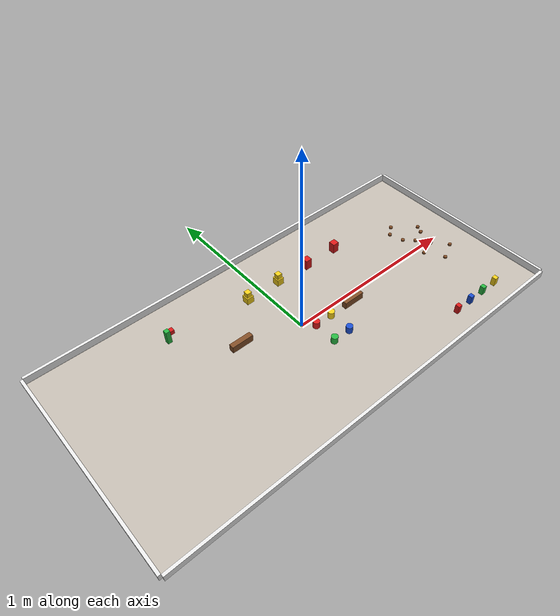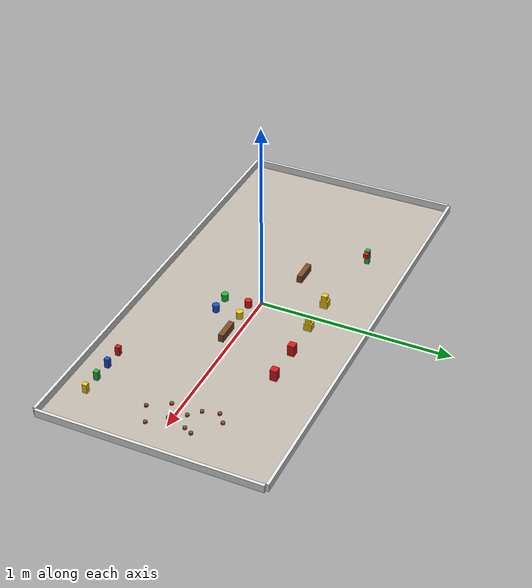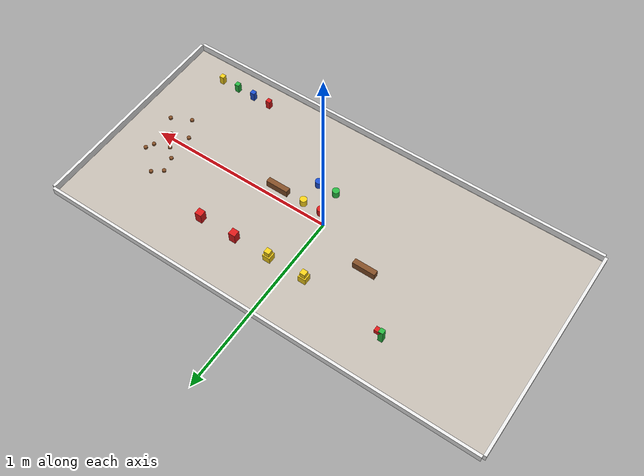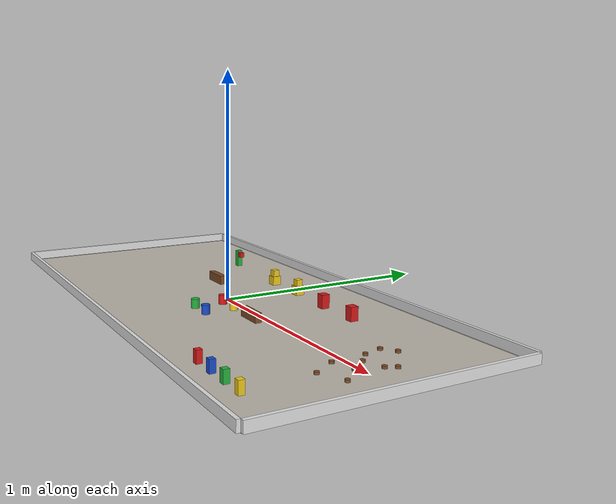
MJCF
<mujoco model="wro_2026_junior_heritage_heroes">
  <compiler angle="degree" coordinate="local"/>

  <option timestep="0.001" iterations="20" solver="Newton"/>

  <asset>
    <texture name="mat_tex" type="2d" file="mat.png"/>
    <material name="mat" texture="mat_tex" texrepeat="1 1"
              specular="0" shininess="0" reflectance="0"/>
    <material name="wall" rgba="0.90 0.90 0.90 1"/>

    <!-- LEGO prop colours -->
    <material name="lego_red"     rgba="0.85 0.10 0.10 1"/>
    <material name="lego_yellow"  rgba="0.95 0.80 0.10 1"/>
    <material name="lego_green"   rgba="0.15 0.70 0.25 1"/>
    <material name="lego_blue"    rgba="0.10 0.30 0.80 1"/>
    <material name="lego_white"   rgba="0.95 0.95 0.95 1"/>
    <material name="lego_black"   rgba="0.08 0.08 0.08 1"/>
    <material name="lego_brown"   rgba="0.50 0.30 0.15 1"/>
    <material name="lego_gray"    rgba="0.55 0.55 0.58 1"/>
  </asset>

  <worldbody>
    <light pos=" 0.6 0 1.6" dir="0 0 -1" diffuse="0.95 0.95 0.95"/>
    <light pos="-0.6 0 1.6" dir="0 0 -1" diffuse="0.65 0.65 0.65"/>

    <!-- ===== MAT (2.362 × 1.143 m, printed texture) ===== -->
    <geom name="mat" type="plane" size="1.181 0.5715 0.01"
          material="mat" friction="0.8 0.02 0.0001"/>

    <!-- Border walls. -->
    <geom name="wall_n" type="box" pos=" 0     0.579  0.02"
          size="1.181 0.0075 0.02" material="wall"/>
    <geom name="wall_s" type="box" pos=" 0    -0.579  0.02"
          size="1.181 0.0075 0.02" material="wall"/>
    <geom name="wall_e" type="box" pos=" 1.188 0      0.02"
          size="0.0075 0.5715 0.02" material="wall"/>
    <geom name="wall_w" type="box" pos="-1.188 0      0.02"
          size="0.0075 0.5715 0.02" material="wall"/>

    <!-- =========================================================
         MISSION 3.5 — bonus props (don't damage/move)
         ========================================================= -->
    <!-- Parrot: green LEGO bird sculpture, ~3×3 stud footprint.
         Upper-mid of the field. -->
    <body name="parrot" pos="-0.55  0.35  0.040">
      <freejoint/>
      <geom type="box" size="0.012 0.012 0.040" mass="0.05" material="lego_green"/>
      <geom type="box" size="0.020 0.012 0.012" pos="0.014 0 0.020"
            mass="0.01" material="lego_red"/>
    </body>

    <!-- Barriers (×2): wooden(brown)/red horizontal beams the robot
         must route around. ~2×8 stud footprint, ~3 bricks tall. -->
    <body name="barrier_a" pos="-0.30  0.10  0.020">
      <freejoint/>
      <geom type="box" size="0.060 0.014 0.020" mass="0.10" material="lego_brown"/>
    </body>
    <body name="barrier_b" pos=" 0.30 -0.05  0.020">
      <freejoint/>
      <geom type="box" size="0.060 0.014 0.020" mass="0.10" material="lego_brown"/>
    </body>

    <body name="visitor_red" pos=" 0.65 -0.45  0.025">
      <freejoint/>
      <geom type="box" size="0.012 0.012 0.025" mass="0.04" material="lego_red"/>
    </body>
    <body name="visitor_blue" pos=" 0.75 -0.45  0.025">
      <freejoint/>
      <geom type="box" size="0.012 0.012 0.025" mass="0.04" material="lego_blue"/>
    </body>
    <body name="visitor_green" pos=" 0.85 -0.45  0.025">
      <freejoint/>
      <geom type="box" size="0.012 0.012 0.025" mass="0.04" material="lego_green"/>
    </body>
    <body name="visitor_yellow" pos=" 0.95 -0.45  0.025">
      <freejoint/>
      <geom type="box" size="0.012 0.012 0.025" mass="0.04" material="lego_yellow"/>
    </body>

    <!-- Yellow tower A: composite (top + base). One body for the
         scoring "completely in" check on the whole tower. -->
    <body name="yellow_tower_a" pos="-0.10  0.30  0.030">
      <freejoint/>
      <!-- base (lower) -->
      <geom type="box" size="0.020 0.020 0.020"
            mass="0.06" material="lego_yellow"/>
      <!-- top -->
      <geom type="box" size="0.014 0.014 0.014" pos="0 0 0.034"
            mass="0.02" material="lego_yellow"/>
    </body>
    <body name="yellow_tower_b" pos=" 0.10  0.30  0.030">
      <freejoint/>
      <geom type="box" size="0.020 0.020 0.020"
            mass="0.06" material="lego_yellow"/>
      <geom type="box" size="0.014 0.014 0.014" pos="0 0 0.034"
            mass="0.02" material="lego_yellow"/>
    </body>
    <!-- Red towers (single piece). -->
    <body name="red_tower_a" pos=" 0.30  0.30  0.030">
      <freejoint/>
      <geom type="box" size="0.018 0.018 0.030" mass="0.07" material="lego_red"/>
    </body>
    <body name="red_tower_b" pos=" 0.50  0.30  0.030">
      <freejoint/>
      <geom type="box" size="0.018 0.018 0.030" mass="0.07" material="lego_red"/>
    </body>

    <body name="artefact_red" pos=" 0.05 -0.05  0.020">
      <freejoint/>
      <geom type="cylinder" size="0.018 0.020" mass="0.05" material="lego_red"/>
    </body>
    <body name="artefact_yellow" pos=" 0.15 -0.05  0.020">
      <freejoint/>
      <geom type="cylinder" size="0.018 0.020" mass="0.05" material="lego_yellow"/>
    </body>
    <body name="artefact_green" pos=" 0.05 -0.18  0.020">
      <freejoint/>
      <geom type="cylinder" size="0.018 0.020" mass="0.05" material="lego_green"/>
    </body>
    <body name="artefact_blue" pos=" 0.15 -0.18  0.020">
      <freejoint/>
      <geom type="cylinder" size="0.018 0.020" mass="0.05" material="lego_blue"/>
    </body>

    <body name="dirt_1" pos=" 0.85  0.10  0.005">
      <freejoint/>
      <geom type="cylinder" size="0.010 0.005" mass="0.005" material="lego_brown"/>
    </body>
    <body name="dirt_2" pos=" 0.90  0.05  0.005">
      <freejoint/>
      <geom type="cylinder" size="0.010 0.005" mass="0.005" material="lego_brown"/>
    </body>
    <body name="dirt_3" pos=" 0.95 -0.02  0.005">
      <freejoint/>
      <geom type="cylinder" size="0.010 0.005" mass="0.005" material="lego_brown"/>
    </body>
    <body name="dirt_4" pos=" 0.98  0.08  0.005">
      <freejoint/>
      <geom type="cylinder" size="0.010 0.005" mass="0.005" material="lego_brown"/>
    </body>
    <body name="dirt_5" pos=" 0.86 -0.05  0.005">
      <freejoint/>
      <geom type="cylinder" size="0.010 0.005" mass="0.005" material="lego_brown"/>
    </body>
    <body name="dirt_6" pos=" 0.92 -0.15  0.005">
      <freejoint/>
      <geom type="cylinder" size="0.010 0.005" mass="0.005" material="lego_brown"/>
    </body>
    <body name="dirt_7" pos=" 1.00  0.12  0.005">
      <freejoint/>
      <geom type="cylinder" size="0.010 0.005" mass="0.005" material="lego_brown"/>
    </body>
    <body name="dirt_8" pos=" 0.83  0.18  0.005">
      <freejoint/>
      <geom type="cylinder" size="0.010 0.005" mass="0.005" material="lego_brown"/>
    </body>
    <body name="dirt_9" pos=" 0.88  0.22  0.005">
      <freejoint/>
      <geom type="cylinder" size="0.010 0.005" mass="0.005" material="lego_brown"/>
    </body>
    <body name="dirt_10" pos=" 1.02 -0.10  0.005">
      <freejoint/>
      <geom type="cylinder" size="0.010 0.005" mass="0.005" material="lego_brown"/>
    </body>

    <!-- Overhead camera for scene preview. -->
    <camera name="overhead" pos="0 0 2.6" xyaxes="1 0 0 0 1 0"/>
  </worldbody>
</mujoco>
